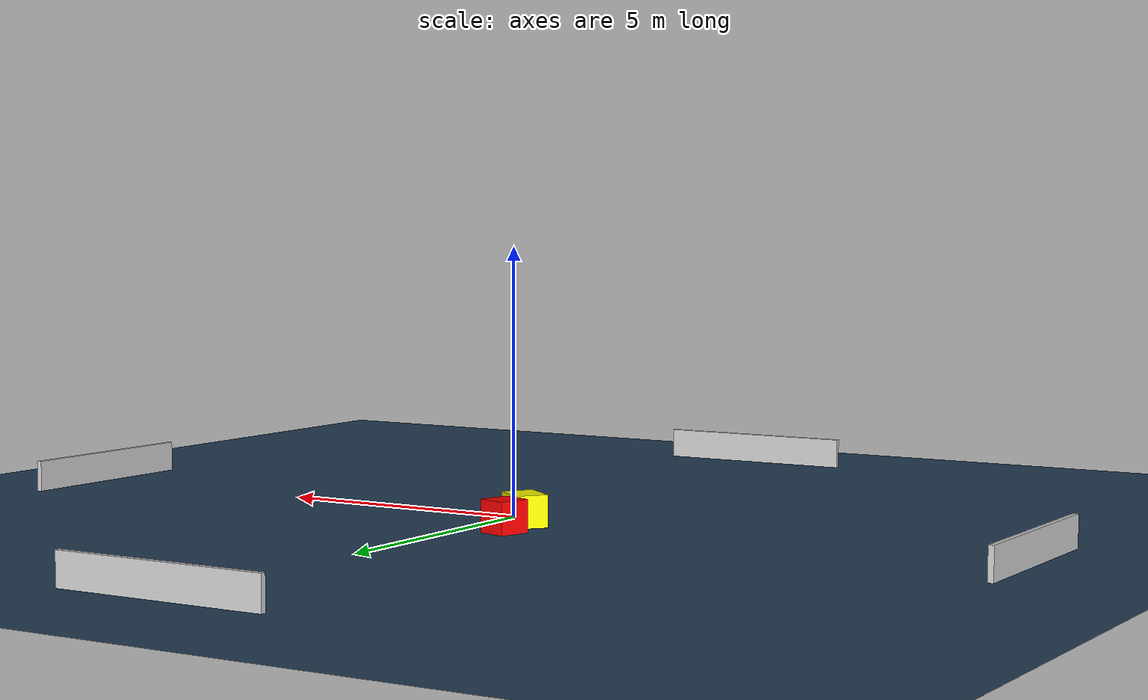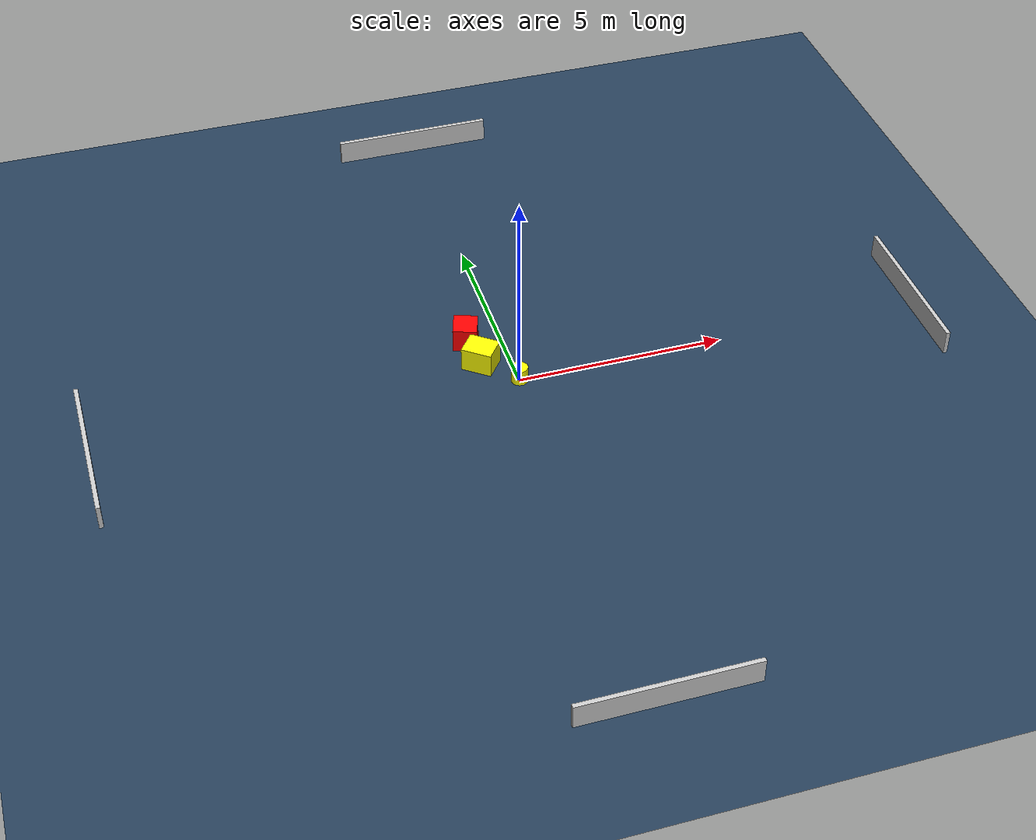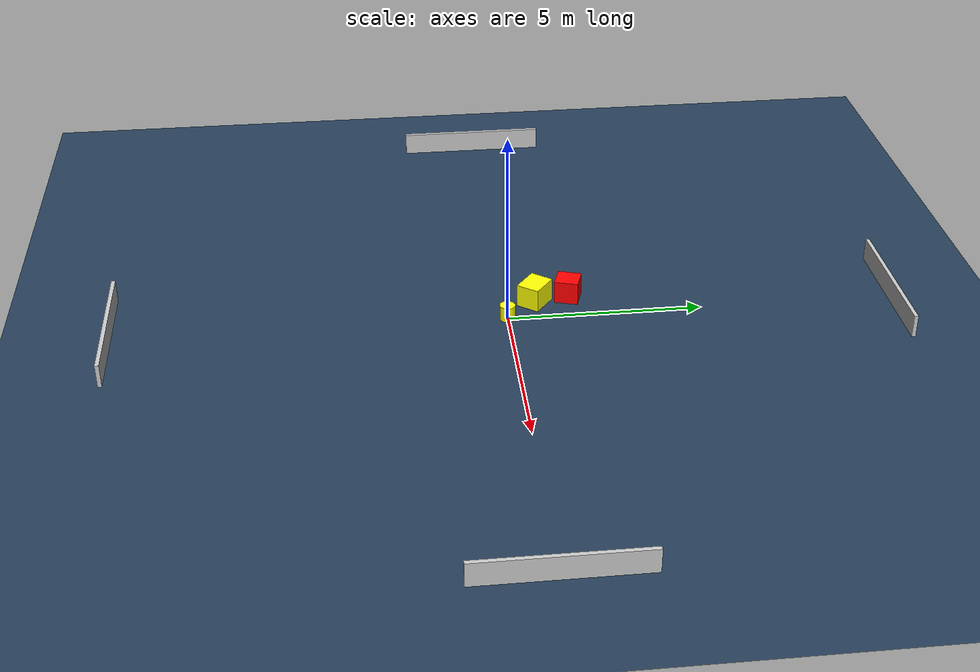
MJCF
<?xml version="1.0" ?>
<mujoco model="generated_environment">
  <option timestep="0.01" integrator="RK4" cone="elliptic"/>
  <default>
    <geom density="1"/>
  </default>
  <asset>
    <texture builtin="gradient" height="3072" name="skybox" rgb1="0.3 0.5 0.7" rgb2="0 0 0" type="skybox" width="512"/>
    <texture builtin="checker" height="300" name="groundplane" rgb1="0.2 0.3 0.4" rgb2="0.1 0.2 0.3" type="2d" width="300"/>
    <material name="groundplane" reflectance="0.2" texrepeat="5 5" texture="groundplane"/>
  </asset>
  <worldbody>
    <light dir="0 0 -1" directional="true" pos="0 0 1.5"/>
    <geom condim="3" friction="0.5 0.005 0.001" material="groundplane" name="floor" pos="0 0 0" size="0 0 0.05" type="plane"/>
    <body name="walls">
      <geom name="wall_1" condim="4" pos="-10.0 0.0 0.3" rgba="0.800000011920929 0.800000011920929 0.800000011920929 1.0" size="0.05 2.0 0.3" type="box"/>
      <geom name="wall_2" condim="4" pos="10.0 0.0 0.3" rgba="0.800000011920929 0.800000011920929 0.800000011920929 1.0" size="0.05 2.0 0.3" type="box"/>
      <geom name="wall_3" condim="4" pos="0.0 -10.0 0.3" rgba="0.800000011920929 0.800000011920929 0.800000011920929 1.0" size="2.0 0.05 0.3" type="box"/>
      <geom name="wall_4" condim="4" pos="0.0 10.0 0.3" rgba="0.800000011920929 0.800000011920929 0.800000011920929 1.0" size="2.0 0.05 0.3" type="box"/>
    </body>
    <body name="robot">
      <joint name="joint_x" type="slide" pos="0 0 0" axis="1 0 0"/>
      <joint name="joint_y" type="slide" pos="0 0 0" axis="0 1 0"/>
      <geom name="robot" type="cylinder" pos="0.0 0.0 0.2" size="0.2 0.2 0.0" mass="5.0" friction="1.0 0.005 0.0001" condim="4" rgba="1.0 1.0 0.0 1.0"/>
    </body>
    <body name="obstacle_1_movable">
      <geom name="obstacle_1_movable" condim="4" pos="-0.7189597742756395 0.787939688678962 0.3" euler="0 0 142.43115576652184" friction="0.0 0.005 0.001" rgba="1.0 1.0 0.0 1.0" size="0.37224803613368684 0.3050230395117665 0.3" type="box" mass="0.1"/>
      <joint type="free"/>
    </body>
    <body name="obstacle_2_static">
      <geom name="obstacle_2_static" condim="4" pos="-0.8447891047135955 1.667924236961928 0.3" euler="0 0 342.1685559042288" friction="0.0 0.005 0.001" rgba="1.0 0.0 0.0 1.0" size="0.290617635486208 0.30705679777482975 0.3" type="box"/>
    </body>
  </worldbody>
  <actuator>
    <motor name="actuator_x" joint="joint_x" gear="1" ctrlrange="-1 1"/>
    <motor name="actuator_y" joint="joint_y" gear="1" ctrlrange="-1 1"/>
  </actuator>
</mujoco>
